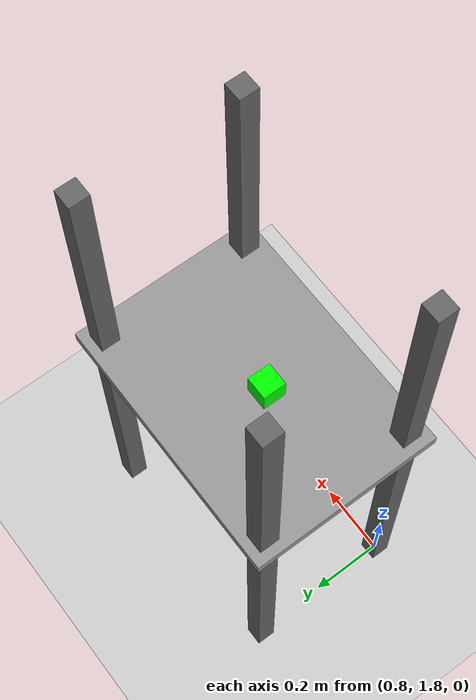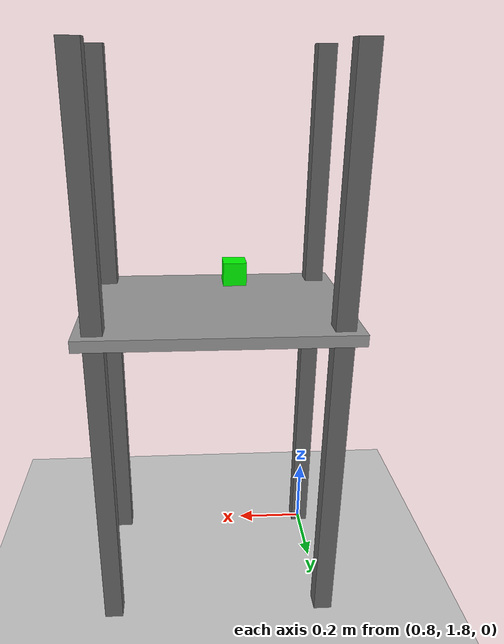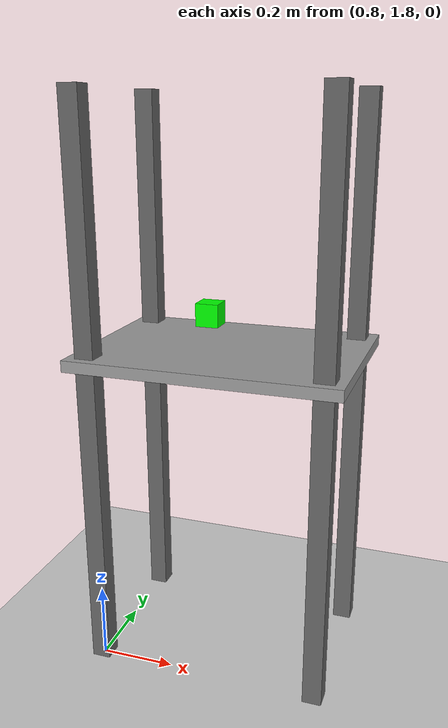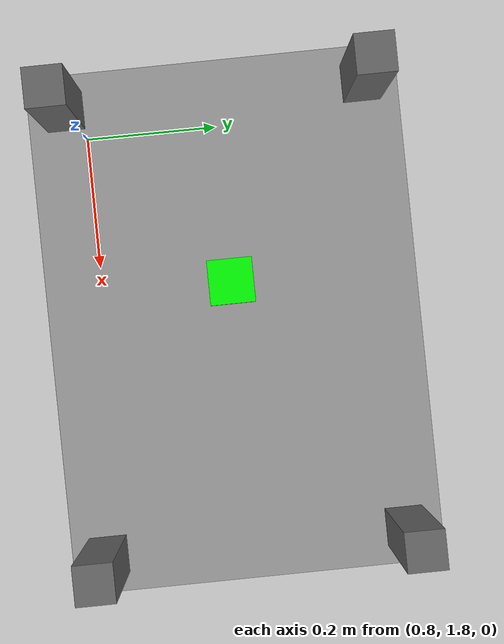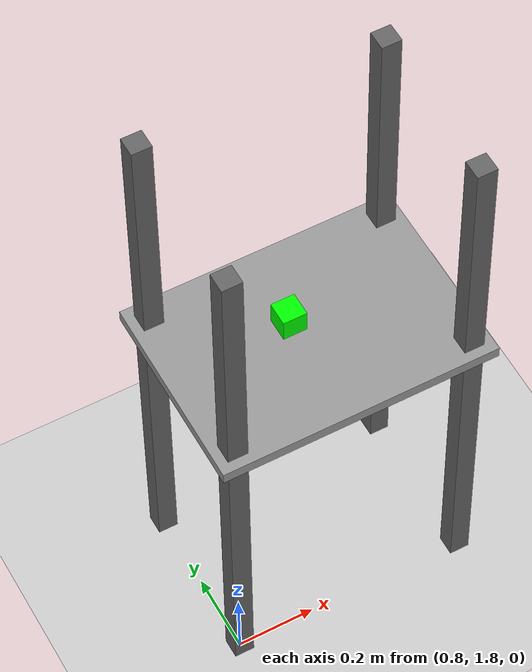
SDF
<?xml version="1.0" ?>
<sdf version="1.6">
  <world name="shopping_rack_world">

    <!-- Light -->
    <include>
      <uri>model://sun</uri>
    </include>

    <!-- Ground -->
    <include>
      <uri>model://ground_plane</uri>
    </include>

    <!-- Simple shopping rack -->
    <model name="shopping_rack">
      <static>true</static>
      <pose>0.8 1.8 0 0 0 0</pose>

      <!-- left vertical -->
      <link name="left_post">
        <pose>0 0 0.75 0 0 0</pose>
        <collision name="collision">
          <geometry>
            <box>
              <size>0.05 0.05 1.5</size>
            </box>
          </geometry>
        </collision>
        <visual name="visual">
          <geometry>
            <box>
              <size>0.05 0.05 1.5</size>
            </box>
          </geometry>
          <material>
            <ambient>0.3 0.3 0.3 1</ambient>
            <diffuse>0.4 0.4 0.4 1</diffuse>
          </material>
        </visual>
      </link>

      <!-- right vertical -->
      <link name="right_post">
        <pose>0.6 0 0.75 0 0 0</pose>
        <collision name="collision">
          <geometry>
            <box>
              <size>0.05 0.05 1.5</size>
            </box>
          </geometry>
        </collision>
        <visual name="visual">
          <geometry>
            <box>
              <size>0.05 0.05 1.5</size>
            </box>
          </geometry>
          <material>
            <ambient>0.3 0.3 0.3 1</ambient>
            <diffuse>0.4 0.4 0.4 1</diffuse>
          </material>
        </visual>
      </link>

      <!-- back left vertical -->
      <link name="left_post_back">
        <pose>0 0.4 0.75 0 0 0</pose>
        <collision name="collision">
          <geometry>
            <box>
              <size>0.05 0.05 1.5</size>
            </box>
          </geometry>
        </collision>
        <visual name="visual">
          <geometry>
            <box>
              <size>0.05 0.05 1.5</size>
            </box>
          </geometry>
          <material>
            <ambient>0.3 0.3 0.3 1</ambient>
            <diffuse>0.4 0.4 0.4 1</diffuse>
          </material>
        </visual>
      </link>

      <!-- back right vertical -->
      <link name="right_post_back">
        <pose>0.6 0.4 0.75 0 0 0</pose>
        <collision name="collision">
          <geometry>
            <box>
              <size>0.05 0.05 1.5</size>
            </box>
          </geometry>
        </collision>
        <visual name="visual">
          <geometry>
            <box>
              <size>0.05 0.05 1.5</size>
            </box>
          </geometry>
          <material>
            <ambient>0.3 0.3 0.3 1</ambient>
            <diffuse>0.4 0.4 0.4 1</diffuse>
          </material>
        </visual>
      </link>

      <!-- shelf -->
      <link name="middle_shelf">
        <pose>0.3 0.2 0.85 0 0 0</pose>
        <collision name="collision">
          <geometry>
            <box>
              <size>0.7 0.5 0.03</size>
            </box>
          </geometry>
        </collision>
        <visual name="visual">
          <geometry>
            <box>
              <size>0.7 0.5 0.03</size>
            </box>
          </geometry>
          <material>
            <ambient>0.5 0.5 0.5 1</ambient>
            <diffuse>0.6 0.6 0.6 1</diffuse>
          </material>
        </visual>
      </link>
    </model>

    <!-- Green item on shelf -->
    <model name="green_item">
      <static>true</static>
      <pose>1.05 2.0 0.95 0 0 0</pose>
      <link name="link">
        <collision name="collision">
          <geometry>
            <box>
              <size>0.06 0.06 0.06</size>
            </box>
          </geometry>
        </collision>
        <visual name="visual">
          <geometry>
            <box>
              <size>0.06 0.06 0.06</size>
            </box>
          </geometry>
          <material>
            <ambient>0 0.8 0 1</ambient>
            <diffuse>0 1 0 1</diffuse>
          </material>
        </visual>
      </link>
    </model>

  </world>
</sdf>
